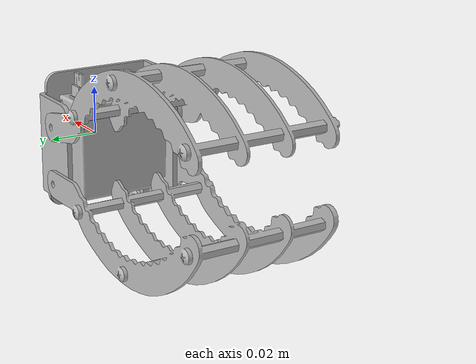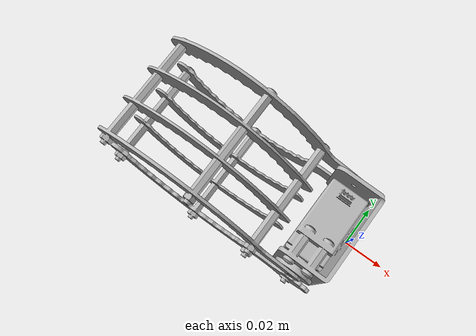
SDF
<sdf version='1.6'>
  <model name='gripper2'>
  <!-- 该模型文件仍然没有迁移到gaz sim，同时使用的是自定义插件 -->
    <link name='base_link'>
      <pose frame=''>0 0 0 0 -0 0</pose>
      <inertial>
        <pose frame=''>-0.008569 -0.00331 -7.8e-05 0 -0 0</pose>
        <mass>0.11906</mass>
        <inertia>
          <ixx>5.4401e-05</ixx>
          <ixy>-3.727e-07</ixy>
          <ixz>-2.0098e-07</ixz>
          <iyy>2.8843e-05</iyy>
          <iyz>-6.0295e-07</iyz>
          <izz>3.7188e-05</izz>
        </inertia>
      </inertial>
      <collision name='base_link_collision'>
        <pose frame=''>0 0 0 0 -0 0</pose>
        <geometry>
          <mesh>
            <scale>1 1 1</scale>
            <uri>model://gripper2/meshes/base_link.STL</uri>
          </mesh>
        </geometry>
      </collision>
      <visual name='base_link_visual'>
        <pose frame=''>0 0 0 0 -0 0</pose>
        <geometry>
          <mesh>
            <scale>1 1 1</scale>
            <uri>model://gripper2/meshes/base_link.STL</uri>
          </mesh>
        </geometry>
      </visual>
    </link>
    <link name='left_link'>
      <pose frame=''>-0.0135 0 0.01 0 -0 0</pose>
      <inertial>
        <pose frame=''>-0.059051 -0.002195 0.020051 0 -0 0</pose>
        <mass>0.026471</mass>
        <inertia>
          <ixx>1.3813e-06</ixx>
          <ixy>-1.211e-11</ixy>
          <ixz>1.2469e-06</ixz>
          <iyy>7.2157e-06</iyy>
          <iyz>-9.8817e-12</iyz>
          <izz>7.1751e-06</izz>
        </inertia>
      </inertial>
      <collision name='left_link_collision'>
        <pose frame=''>0 0 0 0 -0 0</pose>
        <geometry>
          <mesh>
            <scale>1 1 1</scale>
            <uri>model://gripper2/meshes/left_link.STL</uri>
          </mesh>
        </geometry>
      </collision>
      <visual name='left_link_visual'>
        <pose frame=''>0 0 0 0 -0 0</pose>
        <geometry>
          <mesh>
            <scale>1 1 1</scale>
            <uri>model://gripper2/meshes/left_link.STL</uri>
          </mesh>
        </geometry>
      </visual>
    </link>
    <joint name='left_joint' type='revolute'>
      <child>left_link</child>
      <parent>base_link</parent>
      <axis>
        <xyz>0 -1 0.5</xyz>
        <limit>
          <lower>-3</lower>
          <upper>3</upper>
          <effort>1</effort>
          <velocity>1</velocity>
        </limit>
        <dynamics>
          <spring_reference>0</spring_reference>
          <spring_stiffness>0</spring_stiffness>
        </dynamics>
        <use_parent_model_frame>0</use_parent_model_frame>
      </axis>
    </joint>
    <link name='right_link'>
      <pose frame=''>-0.0135 0 -0.014 0 -0 0</pose>
      <inertial>
        <pose frame=''>-0.060951 -0.003321 -0.004856 0 -0 0</pose>
        <mass>0.027594</mass>
        <inertia>
          <ixx>1.2215e-06</ixx>
          <ixy>5.8021e-12</ixy>
          <ixz>1.3138e-07</ixz>
          <iyy>9.4165e-06</iyy>
          <iyz>-7.6154e-12</iyz>
          <izz>9.537e-06</izz>
        </inertia>
      </inertial>
      <collision name='right_link_collision'>
        <pose frame=''>0 0 0 0 -0 0</pose>
        <geometry>
          <mesh>
            <scale>1 1 1</scale>
            <uri>model://gripper2/meshes/right_link.STL</uri>
          </mesh>
        </geometry>
      </collision>
      <visual name='right_link_visual'>
        <pose frame=''>0 0 0 0 -0 0</pose>
        <geometry>
          <mesh>
            <scale>1 1 1</scale>
            <uri>model://gripper2/meshes/right_link.STL</uri>
          </mesh>
        </geometry>
      </visual>
    </link>
    <joint name='right_joint' type='revolute'>
      <child>right_link</child>
      <parent>base_link</parent>
      <axis>
        <xyz>0 -1 0.5</xyz>
        <limit>
          <lower>-3</lower>
          <upper>3</upper>
          <effort>1</effort>
          <velocity>1</velocity>
        </limit>
        <dynamics>
          <spring_reference>0</spring_reference>
          <spring_stiffness>0</spring_stiffness>
        </dynamics>
        <use_parent_model_frame>0</use_parent_model_frame>
      </axis>
    </joint>
  <plugin name="gripper_control2_1" filename="libgripper_plugin2_1.so"/>
  <plugin name="gripper_control2_2" filename="libgripper_plugin2_2.so"/>
  </model>
</sdf>
